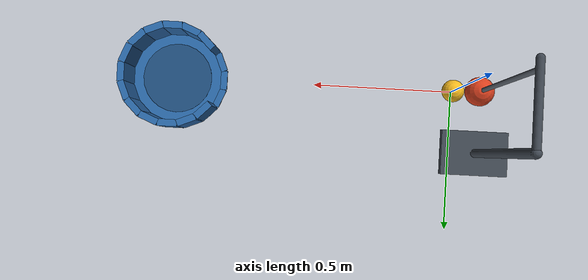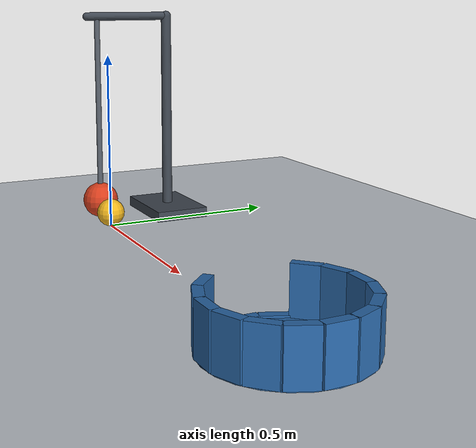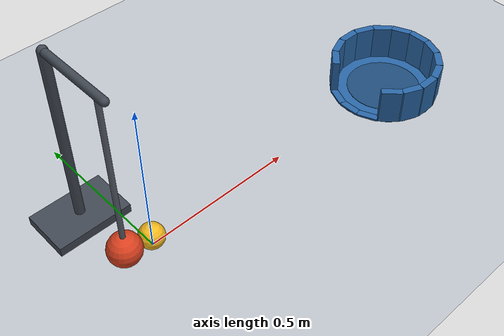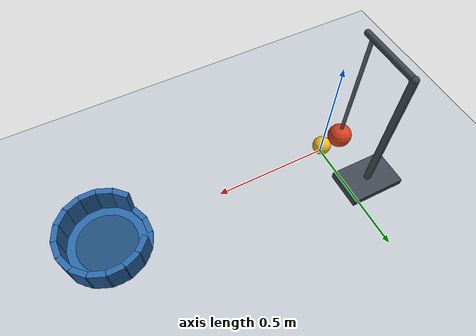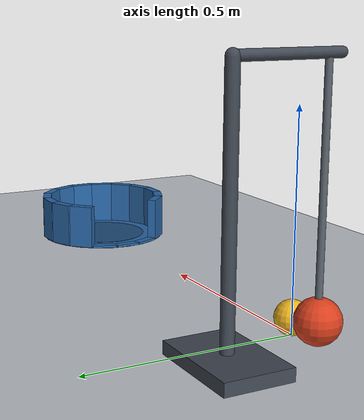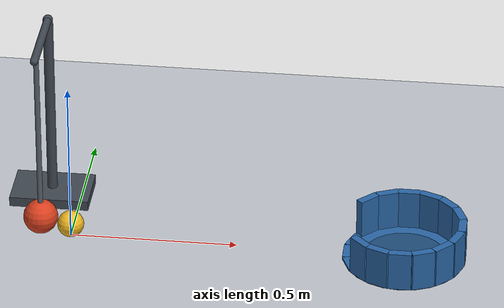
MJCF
<mujoco model="pendulum_ball_cup">
  <compiler angle="degree" autolimits="true"/>
  <option timestep="0.002" gravity="0 0 -9.81" integrator="implicitfast" cone="elliptic" iterations="100"/>
  <size nconmax="200" njmax="1000"/>
  <visual>
    <headlight ambient="0.35 0.35 0.35" diffuse="0.75 0.75 0.75" specular="0.2 0.2 0.2"/>
  </visual>

  <worldbody>
    <light name="overhead" pos="0.4 -1 2.5" dir="0 0 -1"/>
    <camera name="overview" pos="0.5 -2.5 1.6" xyaxes="1 0 0 0 0.48 0.88"/>

    <geom name="floor" type="plane" size="3 2 0.1" pos="0 0 0" condim="6" friction="0.6 0.003 0.0008" solref="0.008 1" solimp="0.95 0.99 0.001" rgba="0.75 0.77 0.80 1"/>

    <!-- The support is offset sideways from the swing and ball trajectory. -->
    <body name="support" pos="-0.09 0.22 0">
      <geom name="support_foot" type="box" pos="0 0 0.015" size="0.12 0.08 0.015" rgba="0.25 0.28 0.32 1"/>
      <geom name="support_post" type="capsule" fromto="0 0 0.03 0 0 0.61" size="0.015" rgba="0.25 0.28 0.32 1"/>
      <geom name="support_axle" type="capsule" fromto="0 0 0.61 0 -0.25 0.61" size="0.012" contype="0" conaffinity="0" rgba="0.25 0.28 0.32 1"/>
    </body>

    <!-- Positive initial hinge angle puts the bob to the left of the ball. -->
    <body name="pendulum" pos="-0.09 0 0.61">
      <joint name="pendulum_hinge" type="hinge" axis="0 1 0" damping="0.006" limited="false"/>
      <geom name="pendulum_rod" type="capsule" fromto="0 0 0 0 0 -0.50" size="0.008" mass="0.012" rgba="0.35 0.38 0.42 1"/>
      <geom name="pendulum_bob" type="sphere" pos="0 0 -0.55" size="0.052" mass="0.20" priority="1" condim="3" friction="0.35 0.003 0.0001" solref="0.008 1" solimp="0.95 0.99 0.001" rgba="0.85 0.25 0.12 1"/>
    </body>

    <body name="ball" pos="0 0 0.04">
      <freejoint name="ball_free"/>
      <geom name="ball" type="sphere" size="0.04" mass="0.05" condim="6" friction="0.6 0.003 0.0008" solref="0.008 1" solimp="0.95 0.99 0.001" rgba="0.95 0.72 0.12 1"/>
    </body>

    <!-- The cup centre is 1 m along the floor from the ball's starting point. -->
    <!-- Its lowered front rim admits the ball; the interior resists rolling. -->
    <body name="cup" pos="1 0 0">
      <geom name="cup_base" type="cylinder" pos="0 0 0" size="0.183 0.001" priority="1" condim="6" friction="0.7 0.005 0.0008" solref="0.008 1" solimp="0.95 0.99 0.001" rgba="0.16 0.40 0.65 1"/>
      <geom name="cup_inner_floor" type="cylinder" pos="0 0 0.001" size="0.125 0.001" priority="2" condim="6" friction="0.9 0.01 0.015" solref="0.008 1" solimp="0.95 0.99 0.001" rgba="0.12 0.30 0.48 1"/>

      <geom name="cup_wall_00" type="box" pos="0.170000 0 0.061" size="0.012 0.034 0.06" euler="0 0 0" priority="2" condim="6" friction="0.9 0.01 0.015" solref="0.008 1" rgba="0.16 0.40 0.65 1"/>
      <geom name="cup_wall_01" type="box" pos="0.157060 0.065056 0.061" size="0.012 0.034 0.06" euler="0 0 22.5" priority="2" condim="6" friction="0.9 0.01 0.015" solref="0.008 1" rgba="0.16 0.40 0.65 1"/>
      <geom name="cup_wall_02" type="box" pos="0.120208 0.120208 0.061" size="0.012 0.034 0.06" euler="0 0 45" priority="2" condim="6" friction="0.9 0.01 0.015" solref="0.008 1" rgba="0.16 0.40 0.65 1"/>
      <geom name="cup_wall_03" type="box" pos="0.065056 0.157060 0.061" size="0.012 0.034 0.06" euler="0 0 67.5" priority="2" condim="6" friction="0.9 0.01 0.015" solref="0.008 1" rgba="0.16 0.40 0.65 1"/>
      <geom name="cup_wall_04" type="box" pos="0 0.170000 0.061" size="0.012 0.034 0.06" euler="0 0 90" priority="2" condim="6" friction="0.9 0.01 0.015" solref="0.008 1" rgba="0.16 0.40 0.65 1"/>
      <geom name="cup_wall_05" type="box" pos="-0.065056 0.157060 0.061" size="0.012 0.034 0.06" euler="0 0 112.5" priority="2" condim="6" friction="0.9 0.01 0.015" solref="0.008 1" rgba="0.16 0.40 0.65 1"/>
      <geom name="cup_wall_06" type="box" pos="-0.120208 0.120208 0.061" size="0.012 0.034 0.06" euler="0 0 135" priority="2" condim="6" friction="0.9 0.01 0.015" solref="0.008 1" rgba="0.16 0.40 0.65 1"/>

      <geom name="cup_entry_07" type="box" pos="-0.157060 0.065056 0.003" size="0.012 0.034 0.003" euler="0 0 157.5" priority="1" condim="6" friction="0.6 0.003 0.0008" solref="0.008 1" rgba="0.16 0.40 0.65 1"/>
      <geom name="cup_entry_08" type="box" pos="-0.170000 0 0.003" size="0.012 0.034 0.003" euler="0 0 180" priority="1" condim="6" friction="0.6 0.003 0.0008" solref="0.008 1" rgba="0.16 0.40 0.65 1"/>
      <geom name="cup_entry_09" type="box" pos="-0.157060 -0.065056 0.003" size="0.012 0.034 0.003" euler="0 0 202.5" priority="1" condim="6" friction="0.6 0.003 0.0008" solref="0.008 1" rgba="0.16 0.40 0.65 1"/>

      <geom name="cup_wall_10" type="box" pos="-0.120208 -0.120208 0.061" size="0.012 0.034 0.06" euler="0 0 225" priority="2" condim="6" friction="0.9 0.01 0.015" solref="0.008 1" rgba="0.16 0.40 0.65 1"/>
      <geom name="cup_wall_11" type="box" pos="-0.065056 -0.157060 0.061" size="0.012 0.034 0.06" euler="0 0 247.5" priority="2" condim="6" friction="0.9 0.01 0.015" solref="0.008 1" rgba="0.16 0.40 0.65 1"/>
      <geom name="cup_wall_12" type="box" pos="0 -0.170000 0.061" size="0.012 0.034 0.06" euler="0 0 270" priority="2" condim="6" friction="0.9 0.01 0.015" solref="0.008 1" rgba="0.16 0.40 0.65 1"/>
      <geom name="cup_wall_13" type="box" pos="0.065056 -0.157060 0.061" size="0.012 0.034 0.06" euler="0 0 292.5" priority="2" condim="6" friction="0.9 0.01 0.015" solref="0.008 1" rgba="0.16 0.40 0.65 1"/>
      <geom name="cup_wall_14" type="box" pos="0.120208 -0.120208 0.061" size="0.012 0.034 0.06" euler="0 0 315" priority="2" condim="6" friction="0.9 0.01 0.015" solref="0.008 1" rgba="0.16 0.40 0.65 1"/>
      <geom name="cup_wall_15" type="box" pos="0.157060 -0.065056 0.061" size="0.012 0.034 0.06" euler="0 0 337.5" priority="2" condim="6" friction="0.9 0.01 0.015" solref="0.008 1" rgba="0.16 0.40 0.65 1"/>
    </body>
  </worldbody>

  <keyframe>
    <key name="start" qpos="0.8 0 0 0.04 1 0 0 0" qvel="0 0 0 0 0 0 0"/>
  </keyframe>
</mujoco>
